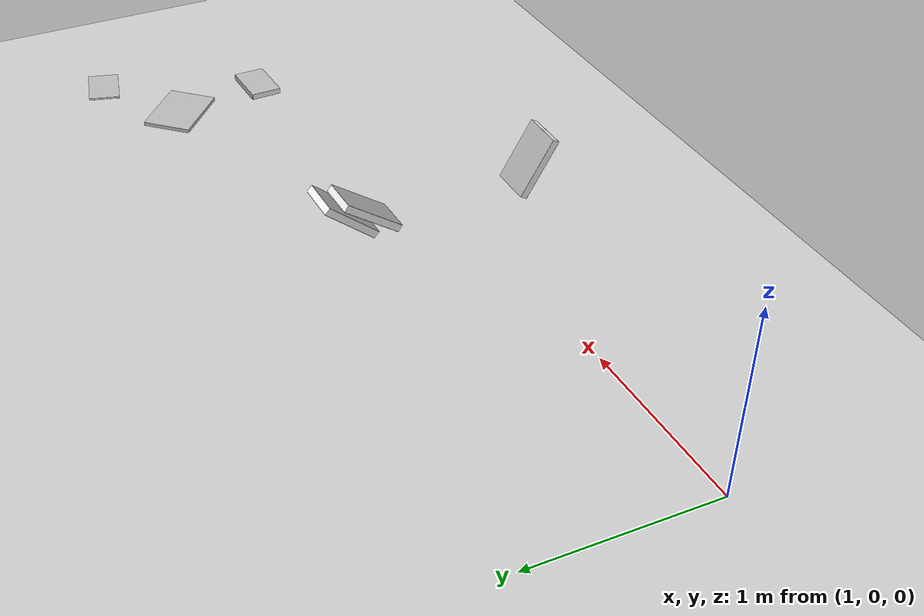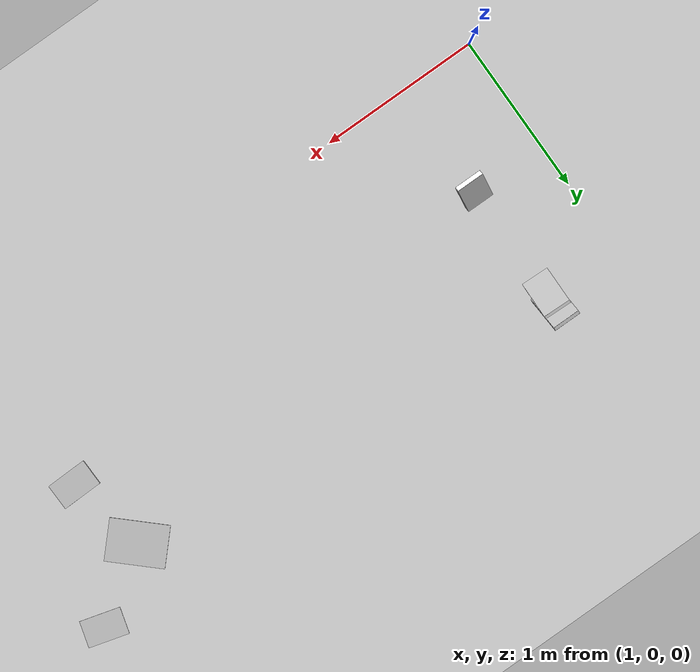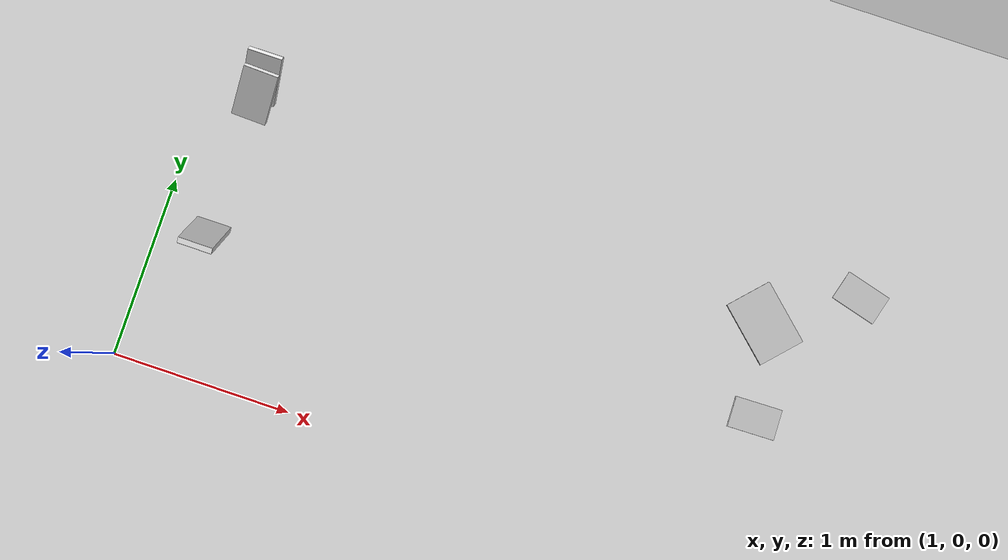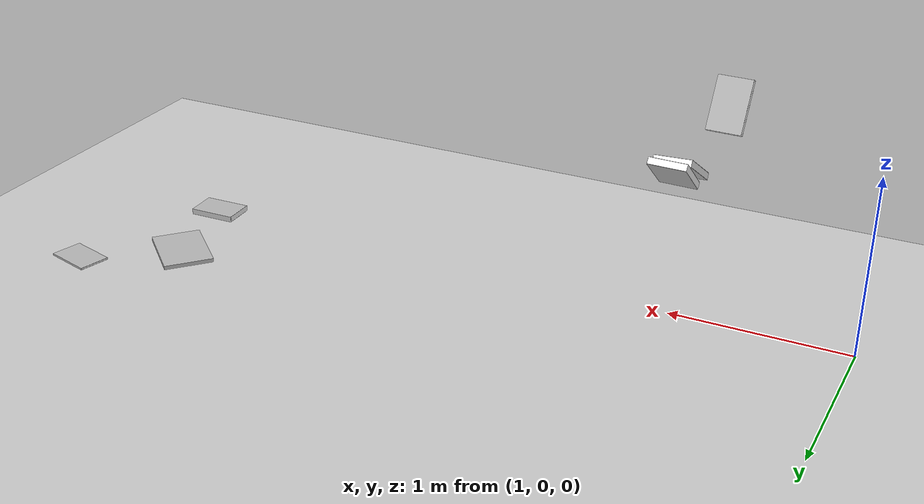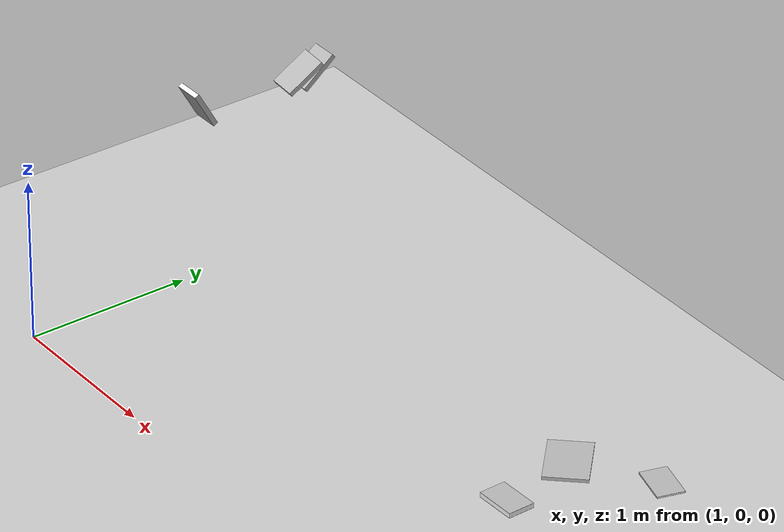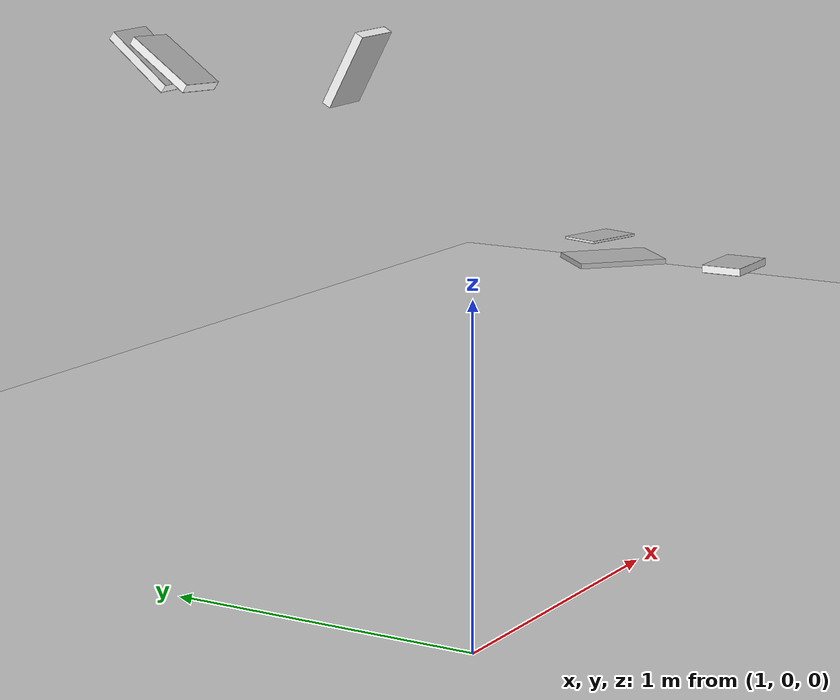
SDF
<sdf version="1.6">
 <world name="default">
  <model name="ground_plane">
   <static>1</static>
   <link name="link">
    <collision name="collision">
     <geometry><plane><normal>0 0 1</normal><size>100 100</size></plane></geometry>
     <surface><friction><ode><mu>1</mu><mu2>1</mu2></ode></friction></surface>
    </collision>
    <visual name="visual">
     <cast_shadows>0</cast_shadows>
     <geometry><plane><normal>0 0 1</normal><size>100 100</size></plane></geometry>
     <material>
      <script><uri>file://media/materials/scripts/gazebo.material</uri><name>Gazebo/Grey</name></script>
     </material>
    </visual>
    <velocity_decay><linear>0</linear><angular>0</angular></velocity_decay>
   </link>
  </model>
  <model name="book_12">
   <link name="cover">
    <pose>0 -0.000108 0.015405 0 -0 0</pose>
    <visual name="visual">
     <geometry><box><size>0.245 0.16 0.03</size></box></geometry>
     <material>
      <script>
       <uri>model://book_12/materials/scripts</uri>
       <uri>model://book_12/materials/textures</uri>
       <name>book_12</name>
      </script>
     </material>
    </visual>
    <collision name="collision"><geometry><box><size>0.245 0.16 0.03</size></box></geometry></collision>
   </link>
   <link name="page">
    <pose>0 0.000608 0.015405 0 -0 0</pose>
    <visual name="visual">
     <geometry><box><size>0.24502 0.15862 0.028</size></box></geometry>
     <material>
      <lighting>1</lighting>
      <ambient>1 1 1 1</ambient>
      <diffuse>1 1 1 1</diffuse>
      <specular>0.01 0.01 0.01 1</specular>
      <emissive>0 0 0 1</emissive>
      <shader type="vertex"><normal_map>__default__</normal_map></shader>
     </material>
    </visual>
    <collision name="collision"><geometry><box><size>0.245 0.16 0.03</size></box></geometry></collision>
   </link>
   <static>1</static>
   <pose>1.5784 1.39365 1.50223 3.07983 0.578016 -1.63068</pose>
  </model>
  <model name="book_16">
   <link name="cover">
    <pose>0 -0.000108 0.015405 0 -0 0</pose>
    <visual name="visual">
     <geometry><box><size>0.245 0.16 0.03</size></box></geometry>
     <material>
      <script>
       <uri>model://book_16/materials/scripts</uri>
       <uri>model://book_16/materials/textures</uri>
       <name>book_16</name>
      </script>
     </material>
    </visual>
    <collision name="collision"><geometry><box><size>0.245 0.16 0.03</size></box></geometry></collision>
   </link>
   <link name="page">
    <pose>0 0.000608 0.015405 0 -0 0</pose>
    <visual name="visual">
     <geometry><box><size>0.24502 0.15862 0.028</size></box></geometry>
     <material>
      <lighting>1</lighting>
      <ambient>1 1 1 1</ambient>
      <diffuse>1 1 1 1</diffuse>
      <specular>0.01 0.01 0.01 1</specular>
      <emissive>0 0 0 1</emissive>
      <shader type="vertex"><normal_map>__default__</normal_map></shader>
     </material>
    </visual>
    <collision name="collision"><geometry><box><size>0.245 0.16 0.03</size></box></geometry></collision>
   </link>
   <static>1</static>
   <pose>4.31939 0.767967 0.431684 0 0 -3.11812</pose>
  </model>
  <model name="book_18">
   <link name="cover">
    <pose>0 -0.000108 0.015405 0 -0 0</pose>
    <visual name="visual">
     <geometry><box><size>0.245 0.16 0.03</size></box></geometry>
     <material>
      <script>
       <uri>model://book_18/materials/scripts</uri>
       <uri>model://book_18/materials/textures</uri>
       <name>book_18</name>
      </script>
     </material>
    </visual>
    <collision name="collision"><geometry><box><size>0.245 0.16 0.03</size></box></geometry></collision>
   </link>
   <link name="page">
    <pose>0 0.000608 0.015405 0 -0 0</pose>
    <visual name="visual">
     <geometry><box><size>0.24502 0.15862 0.028</size></box></geometry>
     <material>
      <lighting>1</lighting>
      <ambient>1 1 1 1</ambient>
      <diffuse>1 1 1 1</diffuse>
      <specular>0.01 0.01 0.01 1</specular>
      <emissive>0 0 0 1</emissive>
      <shader type="vertex"><normal_map>__default__</normal_map></shader>
     </material>
    </visual>
    <collision name="collision"><geometry><box><size>0.245 0.16 0.03</size></box></geometry></collision>
   </link>
   <static>1</static>
   <pose>1.5794 0.721517 1.51174 -0.022284 1.06499 1.55051</pose>
  </model>
  <model name="book_2">
   <link name="cover">
    <pose>0 -0.000108 0.015405 0 -0 0</pose>
    <visual name="visual">
     <geometry><box><size>0.245 0.16 0.03</size></box></geometry>
     <material>
      <script>
       <uri>model://book_2/materials/scripts</uri>
       <uri>model://book_2/materials/textures</uri>
       <name>book_2</name>
      </script>
     </material>
    </visual>
    <collision name="collision"><geometry><box><size>0.245 0.16 0.03</size></box></geometry></collision>
   </link>
   <link name="page">
    <pose>0 0.000608 0.015405 0 -0 0</pose>
    <visual name="visual">
     <geometry><box><size>0.24502 0.15862 0.028</size></box></geometry>
     <material>
      <lighting>1</lighting>
      <ambient>1 1 1 1</ambient>
      <diffuse>1 1 1 1</diffuse>
      <specular>0.01 0.01 0.01 1</specular>
      <emissive>0 0 0 1</emissive>
      <shader type="vertex"><normal_map>__default__</normal_map></shader>
     </material>
    </visual>
    <collision name="collision"><geometry><box><size>0.245 0.16 0.03</size></box></geometry></collision>
   </link>
   <static>1</static>
   <pose>1.58038 1.4756 1.50855 -3.12301 0.677539 -1.55887</pose>
  </model>
  <model name="book_8">
   <link name="cover">
    <pose>0 -0.000108 0.005 0 -0 0</pose>
    <visual name="visual">
     <geometry><box><size>0.245 0.16 0.01</size></box></geometry>
     <material>
      <script>
       <uri>model://book_8/materials/scripts</uri>
       <uri>model://book_8/materials/textures</uri>
       <name>book_8</name>
      </script>
     </material>
    </visual>
    <collision name="collision"><geometry><box><size>0.245 0.16 0.01</size></box></geometry></collision>
   </link>
   <link name="page">
    <pose>0 0.000608 0.005 0 -0 0</pose>
    <visual name="visual">
     <geometry><box><size>0.24502 0.15862 0.008</size></box></geometry>
     <material>
      <lighting>1</lighting>
      <ambient>1 1 1 1</ambient>
      <diffuse>1 1 1 1</diffuse>
      <specular>0.01 0.01 0.01 1</specular>
      <emissive>0 0 0 1</emissive>
      <shader type="vertex"><normal_map>__default__</normal_map></shader>
     </material>
    </visual>
    <collision name="collision"><geometry><box><size>0.245 0.16 0.008</size></box></geometry></collision>
   </link>
   <static>1</static>
   <pose>4.65089 1.52824 0.431029 0 -0 2.87142</pose>
  </model>
  <model name="newspaper_3">
   <link name="link_0">
    <visual name="visual">
     <geometry><box><size>0.35 0.25 0.02</size></box></geometry>
     <material>
      <script>
       <uri>model://newspaper_3/materials/scripts</uri>
       <uri>model://newspaper_3/materials/textures</uri>
       <name>newspaper_3</name>
      </script>
     </material>
    </visual>
    <collision name="collision"><geometry><box><size>0.35 0.25 0.02</size></box></geometry></collision>
   </link>
   <static>1</static>
   <pose>4.22036 1.24525 0.44562 0 0 -0.747151</pose>
  </model>
 </world>
</sdf>
